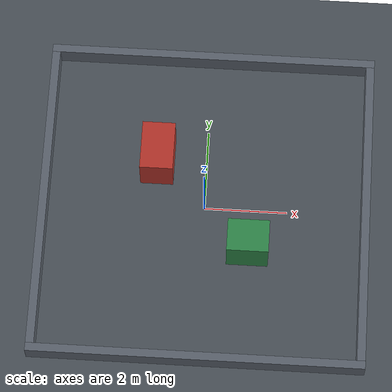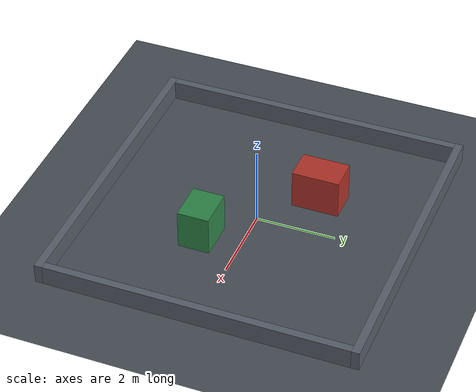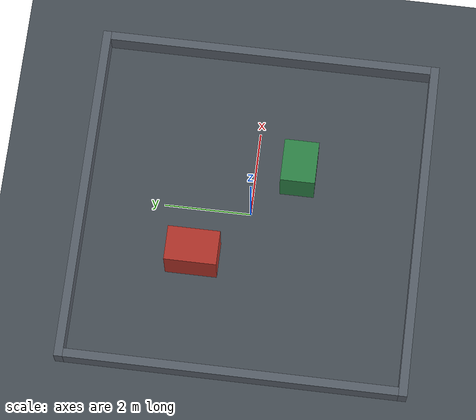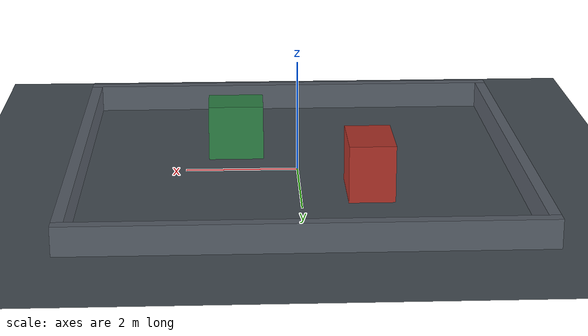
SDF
<?xml version="1.0"?>
<sdf version="1.8">
	<world name="control_link_flat">
		<physics name="2ms" type="ignored">
			<max_step_size>0.002</max_step_size>
			<real_time_factor>1.0</real_time_factor>
		</physics>

		<plugin filename="ignition-gazebo-physics-system" name="gz::sim::systems::Physics"/>
		<plugin filename="ignition-gazebo-user-commands-system" name="gz::sim::systems::UserCommands"/>
		<plugin filename="ignition-gazebo-scene-broadcaster-system" name="gz::sim::systems::SceneBroadcaster"/>
		<plugin filename="ignition-gazebo-sensors-system" name="gz::sim::systems::Sensors">
			<render_engine>ogre2</render_engine>
		</plugin>

		<light type="directional" name="sun">
			<cast_shadows>true</cast_shadows>
			<pose>0 0 10 0 0 0</pose>
			<diffuse>0.8 0.8 0.8 1</diffuse>
			<specular>0.2 0.2 0.2 1</specular>
			<direction>-0.5 0.1 -0.9</direction>
		</light>

		<model name="ground_plane">
			<static>true</static>
			<link name="ground_link">
				<collision name="ground_collision">
					<geometry>
						<plane>
							<normal>0 0 1</normal>
							<size>20 20</size>
						</plane>
					</geometry>
				</collision>
				<visual name="ground_visual">
					<geometry>
						<plane>
							<normal>0 0 1</normal>
							<size>20 20</size>
						</plane>
					</geometry>
					<material>
						<ambient>0.16 0.18 0.20 1</ambient>
						<diffuse>0.28 0.31 0.34 1</diffuse>
					</material>
				</visual>
			</link>
		</model>

		<model name="map_boundary">
			<static>true</static>
			<link name="north_wall">
				<pose>0 3.9 0.25 0 0 0</pose>
				<collision name="collision">
					<geometry><box><size>8.0 0.2 0.5</size></box></geometry>
				</collision>
				<visual name="visual">
					<geometry><box><size>8.0 0.2 0.5</size></box></geometry>
					<material><diffuse>0.35 0.38 0.42 1</diffuse></material>
				</visual>
			</link>
			<link name="south_wall">
				<pose>0 -3.9 0.25 0 0 0</pose>
				<collision name="collision">
					<geometry><box><size>8.0 0.2 0.5</size></box></geometry>
				</collision>
				<visual name="visual">
					<geometry><box><size>8.0 0.2 0.5</size></box></geometry>
					<material><diffuse>0.35 0.38 0.42 1</diffuse></material>
				</visual>
			</link>
			<link name="east_wall">
				<pose>3.9 0 0.25 0 0 0</pose>
				<collision name="collision">
					<geometry><box><size>0.2 7.6 0.5</size></box></geometry>
				</collision>
				<visual name="visual">
					<geometry><box><size>0.2 7.6 0.5</size></box></geometry>
					<material><diffuse>0.35 0.38 0.42 1</diffuse></material>
				</visual>
			</link>
			<link name="west_wall">
				<pose>-3.9 0 0.25 0 0 0</pose>
				<collision name="collision">
					<geometry><box><size>0.2 7.6 0.5</size></box></geometry>
				</collision>
				<visual name="visual">
					<geometry><box><size>0.2 7.6 0.5</size></box></geometry>
					<material><diffuse>0.35 0.38 0.42 1</diffuse></material>
				</visual>
			</link>
		</model>

		<!-- 两个静态障碍物与 control_link_map.pgm 使用同一 world 坐标 -->
		<model name="north_west_obstacle">
			<static>true</static>
			<pose>-1.2 1.2 0.5 0 0 0</pose>
			<link name="obstacle_link">
				<collision name="obstacle_collision">
					<geometry>
						<box><size>0.8 1.2 1.0</size></box>
					</geometry>
				</collision>
				<visual name="obstacle_visual">
					<geometry>
						<box><size>0.8 1.2 1.0</size></box>
					</geometry>
					<material>
						<ambient>0.45 0.12 0.10 1</ambient>
						<diffuse>0.70 0.20 0.16 1</diffuse>
					</material>
				</visual>
			</link>
		</model>

		<model name="south_east_obstacle">
			<static>true</static>
			<pose>1.1 -1.0 0.5 0 0 0</pose>
			<link name="obstacle_link">
				<collision name="obstacle_collision">
					<geometry>
						<box><size>1.0 0.8 1.0</size></box>
					</geometry>
				</collision>
				<visual name="obstacle_visual">
					<geometry>
						<box><size>1.0 0.8 1.0</size></box>
					</geometry>
					<material>
						<ambient>0.12 0.32 0.18 1</ambient>
						<diffuse>0.18 0.52 0.28 1</diffuse>
					</material>
				</visual>
			</link>
		</model>
	</world>
</sdf>
